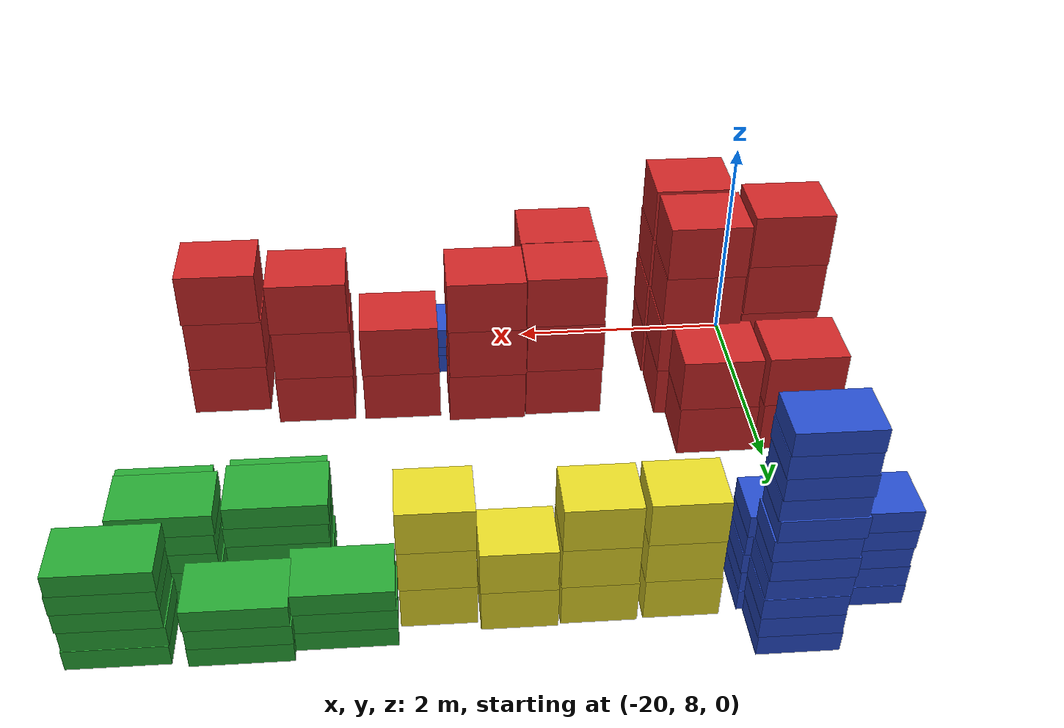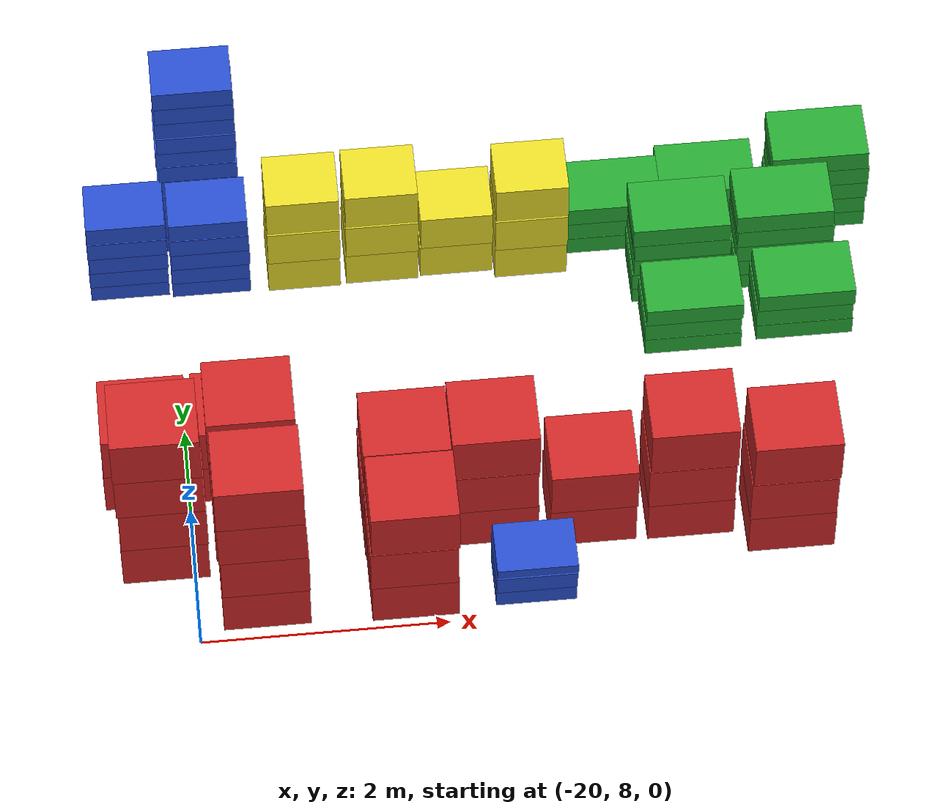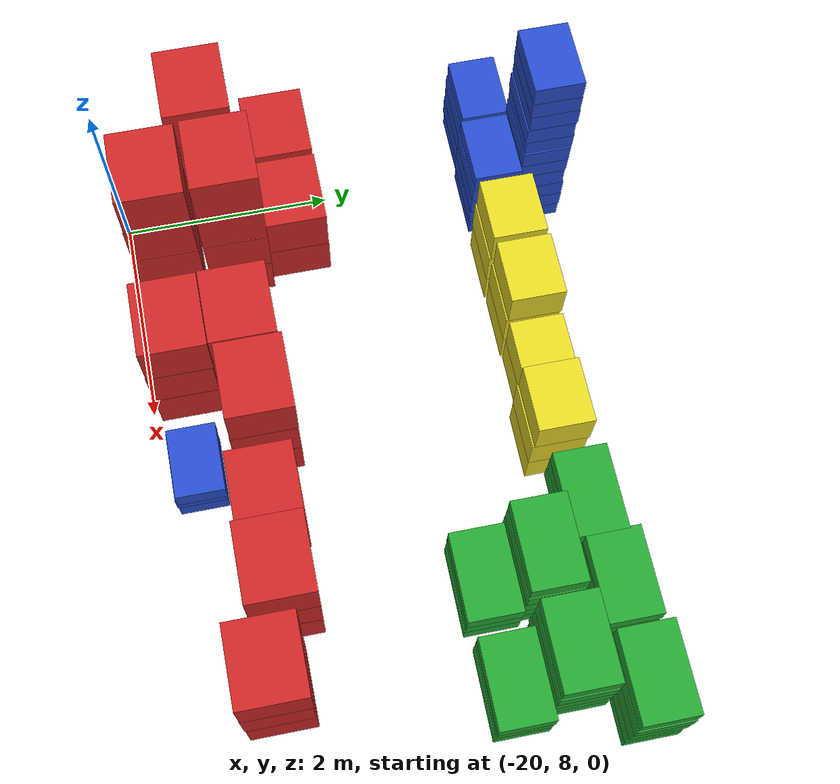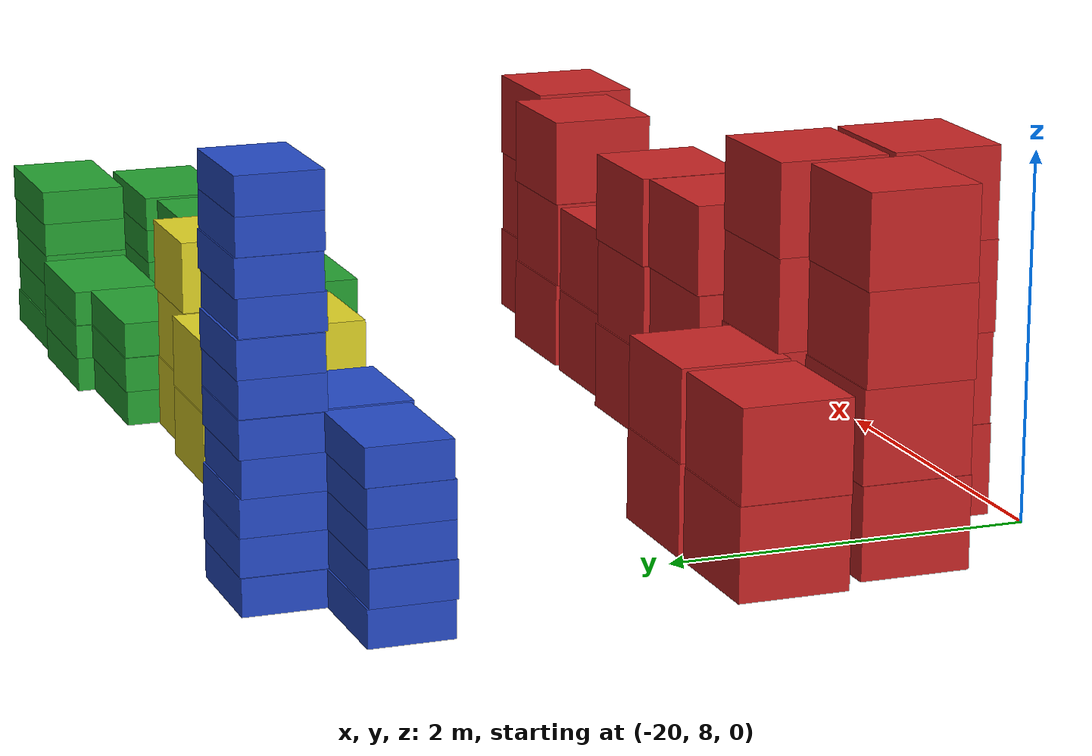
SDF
<sdf version="1.6">
 <world name="default">
  <include><uri>model://sun</uri></include>
  <model name="baggage_A_x3_5">
   <model name="baggage_A_0">
    <static>1</static>
    <link name="link">
     <collision name="collision"><geometry><box><size>0.7 0.6 0.5</size></box></geometry></collision>
     <visual name="visual">
      <geometry><box><size>0.7 0.6 0.5</size></box></geometry>
      <material>
       <script><uri>file://media/materials/scripts/gazebo.material</uri><name>Gazebo/Red</name></script>
      </material>
     </visual>
    </link>
    <pose>0 0 0.25 0 -0 0</pose>
   </model>
   <model name="baggage_A_1">
    <static>1</static>
    <link name="link">
     <collision name="collision"><geometry><box><size>0.7 0.6 0.5</size></box></geometry></collision>
     <visual name="visual">
      <geometry><box><size>0.7 0.6 0.5</size></box></geometry>
      <material>
       <script><uri>file://media/materials/scripts/gazebo.material</uri><name>Gazebo/Red</name></script>
      </material>
     </visual>
    </link>
    <pose>-0.006 -0.0077 0.75 0 -0 0</pose>
   </model>
   <model name="baggage_A_2">
    <static>1</static>
    <link name="link">
     <collision name="collision"><geometry><box><size>0.7 0.6 0.5</size></box></geometry></collision>
     <visual name="visual">
      <geometry><box><size>0.7 0.6 0.5</size></box></geometry>
      <material>
       <script><uri>file://media/materials/scripts/gazebo.material</uri><name>Gazebo/Red</name></script>
      </material>
     </visual>
    </link>
    <pose>0.0045 0.0005 1.25 0 -0 0</pose>
   </model>
   <pose>-15.1941 8.72762 0 0 -0 0</pose>
  </model>
  <model name="baggage_A_x4_6">
   <model name="baggage_A_0">
    <static>1</static>
    <link name="link">
     <collision name="collision"><geometry><box><size>0.7 0.6 0.5</size></box></geometry></collision>
     <visual name="visual">
      <geometry><box><size>0.7 0.6 0.5</size></box></geometry>
      <material>
       <script><uri>file://media/materials/scripts/gazebo.material</uri><name>Gazebo/Red</name></script>
      </material>
     </visual>
    </link>
    <pose>0 0 0.25 0 -0 0</pose>
   </model>
   <model name="baggage_A_1">
    <static>1</static>
    <link name="link">
     <collision name="collision"><geometry><box><size>0.7 0.6 0.5</size></box></geometry></collision>
     <visual name="visual">
      <geometry><box><size>0.7 0.6 0.5</size></box></geometry>
      <material>
       <script><uri>file://media/materials/scripts/gazebo.material</uri><name>Gazebo/Red</name></script>
      </material>
     </visual>
    </link>
    <pose>0.0053 0.0033 0.75 0 -0 0</pose>
   </model>
   <model name="baggage_A_2">
    <static>1</static>
    <link name="link">
     <collision name="collision"><geometry><box><size>0.7 0.6 0.5</size></box></geometry></collision>
     <visual name="visual">
      <geometry><box><size>0.7 0.6 0.5</size></box></geometry>
      <material>
       <script><uri>file://media/materials/scripts/gazebo.material</uri><name>Gazebo/Red</name></script>
      </material>
     </visual>
    </link>
    <pose>-0.0056 -0.0003 1.25 0 -0 0</pose>
   </model>
   <model name="baggage_A_3">
    <static>1</static>
    <link name="link">
     <collision name="collision"><geometry><box><size>0.7 0.6 0.5</size></box></geometry></collision>
     <visual name="visual">
      <geometry><box><size>0.7 0.6 0.5</size></box></geometry>
      <material>
       <script><uri>file://media/materials/scripts/gazebo.material</uri><name>Gazebo/Red</name></script>
      </material>
     </visual>
    </link>
    <pose>-0.0098 0.0065 1.75 0 -0 0</pose>
   </model>
   <pose>-19.4592 8.39699 0 0 -0 0</pose>
  </model>
  <model name="baggage_A_x4_7">
   <model name="baggage_A_0">
    <static>1</static>
    <link name="link">
     <collision name="collision"><geometry><box><size>0.7 0.6 0.5</size></box></geometry></collision>
     <visual name="visual">
      <geometry><box><size>0.7 0.6 0.5</size></box></geometry>
      <material>
       <script><uri>file://media/materials/scripts/gazebo.material</uri><name>Gazebo/Red</name></script>
      </material>
     </visual>
    </link>
    <pose>0 0 0.25 0 -0 0</pose>
   </model>
   <model name="baggage_A_1">
    <static>1</static>
    <link name="link">
     <collision name="collision"><geometry><box><size>0.7 0.6 0.5</size></box></geometry></collision>
     <visual name="visual">
      <geometry><box><size>0.7 0.6 0.5</size></box></geometry>
      <material>
       <script><uri>file://media/materials/scripts/gazebo.material</uri><name>Gazebo/Red</name></script>
      </material>
     </visual>
    </link>
    <pose>0.0053 0.0033 0.75 0 -0 0</pose>
   </model>
   <model name="baggage_A_2">
    <static>1</static>
    <link name="link">
     <collision name="collision"><geometry><box><size>0.7 0.6 0.5</size></box></geometry></collision>
     <visual name="visual">
      <geometry><box><size>0.7 0.6 0.5</size></box></geometry>
      <material>
       <script><uri>file://media/materials/scripts/gazebo.material</uri><name>Gazebo/Red</name></script>
      </material>
     </visual>
    </link>
    <pose>-0.0056 -0.0003 1.25 0 -0 0</pose>
   </model>
   <model name="baggage_A_3">
    <static>1</static>
    <link name="link">
     <collision name="collision"><geometry><box><size>0.7 0.6 0.5</size></box></geometry></collision>
     <visual name="visual">
      <geometry><box><size>0.7 0.6 0.5</size></box></geometry>
      <material>
       <script><uri>file://media/materials/scripts/gazebo.material</uri><name>Gazebo/Red</name></script>
      </material>
     </visual>
    </link>
    <pose>-0.0098 0.0065 1.75 0 -0 0</pose>
   </model>
   <pose>-19.4743 9.04443 0 0 -0 0</pose>
  </model>
  <model name="baggage_A_x4_8">
   <model name="baggage_A_0">
    <static>1</static>
    <link name="link">
     <collision name="collision"><geometry><box><size>0.7 0.6 0.5</size></box></geometry></collision>
     <visual name="visual">
      <geometry><box><size>0.7 0.6 0.5</size></box></geometry>
      <material>
       <script><uri>file://media/materials/scripts/gazebo.material</uri><name>Gazebo/Red</name></script>
      </material>
     </visual>
    </link>
    <pose>0 0 0.25 0 -0 0</pose>
   </model>
   <model name="baggage_A_1">
    <static>1</static>
    <link name="link">
     <collision name="collision"><geometry><box><size>0.7 0.6 0.5</size></box></geometry></collision>
     <visual name="visual">
      <geometry><box><size>0.7 0.6 0.5</size></box></geometry>
      <material>
       <script><uri>file://media/materials/scripts/gazebo.material</uri><name>Gazebo/Red</name></script>
      </material>
     </visual>
    </link>
    <pose>0.0053 0.0033 0.75 0 -0 0</pose>
   </model>
   <model name="baggage_A_2">
    <static>1</static>
    <link name="link">
     <collision name="collision"><geometry><box><size>0.7 0.6 0.5</size></box></geometry></collision>
     <visual name="visual">
      <geometry><box><size>0.7 0.6 0.5</size></box></geometry>
      <material>
       <script><uri>file://media/materials/scripts/gazebo.material</uri><name>Gazebo/Red</name></script>
      </material>
     </visual>
    </link>
    <pose>-0.0056 -0.0003 1.25 0 -0 0</pose>
   </model>
   <model name="baggage_A_3">
    <static>1</static>
    <link name="link">
     <collision name="collision"><geometry><box><size>0.7 0.6 0.5</size></box></geometry></collision>
     <visual name="visual">
      <geometry><box><size>0.7 0.6 0.5</size></box></geometry>
      <material>
       <script><uri>file://media/materials/scripts/gazebo.material</uri><name>Gazebo/Red</name></script>
      </material>
     </visual>
    </link>
    <pose>-0.0098 0.0065 1.75 0 -0 0</pose>
   </model>
   <pose>-20.2342 8.90723 0 0 -0 0</pose>
  </model>
  <model name="baggage_A_x2_6">
   <model name="baggage_A_0">
    <static>1</static>
    <link name="link">
     <collision name="collision"><geometry><box><size>0.7 0.6 0.5</size></box></geometry></collision>
     <visual name="visual">
      <geometry><box><size>0.7 0.6 0.5</size></box></geometry>
      <material>
       <script><uri>file://media/materials/scripts/gazebo.material</uri><name>Gazebo/Red</name></script>
      </material>
     </visual>
    </link>
    <pose>0 0 0.25 0 -0 0</pose>
   </model>
   <model name="baggage_A_1">
    <static>1</static>
    <link name="link">
     <collision name="collision"><geometry><box><size>0.7 0.6 0.5</size></box></geometry></collision>
     <visual name="visual">
      <geometry><box><size>0.7 0.6 0.5</size></box></geometry>
      <material>
       <script><uri>file://media/materials/scripts/gazebo.material</uri><name>Gazebo/Red</name></script>
      </material>
     </visual>
    </link>
    <pose>0.0063 -0.0062 0.75 0 -0 0</pose>
   </model>
   <pose>-20.3334 9.61634 0 0 -0 0</pose>
  </model>
  <model name="baggage_A_x2_7">
   <model name="baggage_A_0">
    <static>1</static>
    <link name="link">
     <collision name="collision"><geometry><box><size>0.7 0.6 0.5</size></box></geometry></collision>
     <visual name="visual">
      <geometry><box><size>0.7 0.6 0.5</size></box></geometry>
      <material>
       <script><uri>file://media/materials/scripts/gazebo.material</uri><name>Gazebo/Red</name></script>
      </material>
     </visual>
    </link>
    <pose>0 0 0.25 0 -0 0</pose>
   </model>
   <model name="baggage_A_1">
    <static>1</static>
    <link name="link">
     <collision name="collision"><geometry><box><size>0.7 0.6 0.5</size></box></geometry></collision>
     <visual name="visual">
      <geometry><box><size>0.7 0.6 0.5</size></box></geometry>
      <material>
       <script><uri>file://media/materials/scripts/gazebo.material</uri><name>Gazebo/Red</name></script>
      </material>
     </visual>
    </link>
    <pose>0.0063 -0.0062 0.75 0 -0 0</pose>
   </model>
   <pose>-19.582 9.62279 0 0 -0 0</pose>
  </model>
  <model name="baggage_B_x3_10">
   <model name="baggage_B_0">
    <static>1</static>
    <link name="link">
     <collision name="collision"><geometry><box><size>0.65 0.45 0.2</size></box></geometry></collision>
     <visual name="visual">
      <geometry><box><size>0.65 0.45 0.2</size></box></geometry>
      <material>
       <script><uri>file://media/materials/scripts/gazebo.material</uri><name>Gazebo/Blue</name></script>
      </material>
     </visual>
    </link>
    <pose>0 0 0.1 0 -0 0</pose>
   </model>
   <model name="baggage_B_1">
    <static>1</static>
    <link name="link">
     <collision name="collision"><geometry><box><size>0.65 0.45 0.2</size></box></geometry></collision>
     <visual name="visual">
      <geometry><box><size>0.65 0.45 0.2</size></box></geometry>
      <material>
       <script><uri>file://media/materials/scripts/gazebo.material</uri><name>Gazebo/Blue</name></script>
      </material>
     </visual>
    </link>
    <pose>0.0028 -0.0086 0.3 0 -0 0</pose>
   </model>
   <model name="baggage_B_2">
    <static>1</static>
    <link name="link">
     <collision name="collision"><geometry><box><size>0.65 0.45 0.2</size></box></geometry></collision>
     <visual name="visual">
      <geometry><box><size>0.65 0.45 0.2</size></box></geometry>
      <material>
       <script><uri>file://media/materials/scripts/gazebo.material</uri><name>Gazebo/Blue</name></script>
      </material>
     </visual>
    </link>
    <pose>0.0092 0.006 0.4 0 -0 0</pose>
   </model>
   <pose>-17.2936 8.3443 0 0 -0 0</pose>
  </model>
  <model name="baggage_B_x5_7">
   <model name="baggage_B_0">
    <static>1</static>
    <link name="link">
     <collision name="collision"><geometry><box><size>0.65 0.45 0.2</size></box></geometry></collision>
     <visual name="visual">
      <geometry><box><size>0.65 0.45 0.2</size></box></geometry>
      <material>
       <script><uri>file://media/materials/scripts/gazebo.material</uri><name>Gazebo/Blue</name></script>
      </material>
     </visual>
    </link>
    <pose>0 0 0.1 0 -0 0</pose>
   </model>
   <model name="baggage_B_1">
    <static>1</static>
    <link name="link">
     <collision name="collision"><geometry><box><size>0.65 0.45 0.2</size></box></geometry></collision>
     <visual name="visual">
      <geometry><box><size>0.65 0.45 0.2</size></box></geometry>
      <material>
       <script><uri>file://media/materials/scripts/gazebo.material</uri><name>Gazebo/Blue</name></script>
      </material>
     </visual>
    </link>
    <pose>-0.0014 -0.0091 0.3 0 -0 0</pose>
   </model>
   <model name="baggage_B_2">
    <static>1</static>
    <link name="link">
     <collision name="collision"><geometry><box><size>0.65 0.45 0.2</size></box></geometry></collision>
     <visual name="visual">
      <geometry><box><size>0.65 0.45 0.2</size></box></geometry>
      <material>
       <script><uri>file://media/materials/scripts/gazebo.material</uri><name>Gazebo/Blue</name></script>
      </material>
     </visual>
    </link>
    <pose>0.0076 -0.0066 0.5 0 -0 0</pose>
   </model>
   <model name="baggage_B_3">
    <static>1</static>
    <link name="link">
     <collision name="collision"><geometry><box><size>0.65 0.45 0.2</size></box></geometry></collision>
     <visual name="visual">
      <geometry><box><size>0.65 0.45 0.2</size></box></geometry>
      <material>
       <script><uri>file://media/materials/scripts/gazebo.material</uri><name>Gazebo/Blue</name></script>
      </material>
     </visual>
    </link>
    <pose>0 -0.0032 0.7 0 -0 0</pose>
   </model>
   <model name="baggage_B_4">
    <static>1</static>
    <link name="link">
     <collision name="collision"><geometry><box><size>0.65 0.45 0.2</size></box></geometry></collision>
     <visual name="visual">
      <geometry><box><size>0.65 0.45 0.2</size></box></geometry>
      <material>
       <script><uri>file://media/materials/scripts/gazebo.material</uri><name>Gazebo/Blue</name></script>
      </material>
     </visual>
    </link>
    <pose>0.0023 0.0073 0.9 0 -0 0</pose>
   </model>
   <pose>-20.3574 11.6061 0 0 -0 0</pose>
  </model>
  <model name="baggage_B_x5_8">
   <model name="baggage_B_0">
    <static>1</static>
    <link name="link">
     <collision name="collision"><geometry><box><size>0.65 0.45 0.2</size></box></geometry></collision>
     <visual name="visual">
      <geometry><box><size>0.65 0.45 0.2</size></box></geometry>
      <material>
       <script><uri>file://media/materials/scripts/gazebo.material</uri><name>Gazebo/Blue</name></script>
      </material>
     </visual>
    </link>
    <pose>0 0 0.1 0 -0 0</pose>
   </model>
   <model name="baggage_B_1">
    <static>1</static>
    <link name="link">
     <collision name="collision"><geometry><box><size>0.65 0.45 0.2</size></box></geometry></collision>
     <visual name="visual">
      <geometry><box><size>0.65 0.45 0.2</size></box></geometry>
      <material>
       <script><uri>file://media/materials/scripts/gazebo.material</uri><name>Gazebo/Blue</name></script>
      </material>
     </visual>
    </link>
    <pose>-0.0014 -0.0091 0.3 0 -0 0</pose>
   </model>
   <model name="baggage_B_2">
    <static>1</static>
    <link name="link">
     <collision name="collision"><geometry><box><size>0.65 0.45 0.2</size></box></geometry></collision>
     <visual name="visual">
      <geometry><box><size>0.65 0.45 0.2</size></box></geometry>
      <material>
       <script><uri>file://media/materials/scripts/gazebo.material</uri><name>Gazebo/Blue</name></script>
      </material>
     </visual>
    </link>
    <pose>0.0076 -0.0066 0.5 0 -0 0</pose>
   </model>
   <model name="baggage_B_3">
    <static>1</static>
    <link name="link">
     <collision name="collision"><geometry><box><size>0.65 0.45 0.2</size></box></geometry></collision>
     <visual name="visual">
      <geometry><box><size>0.65 0.45 0.2</size></box></geometry>
      <material>
       <script><uri>file://media/materials/scripts/gazebo.material</uri><name>Gazebo/Blue</name></script>
      </material>
     </visual>
    </link>
    <pose>0 -0.0032 0.7 0 -0 0</pose>
   </model>
   <model name="baggage_B_4">
    <static>1</static>
    <link name="link">
     <collision name="collision"><geometry><box><size>0.65 0.45 0.2</size></box></geometry></collision>
     <visual name="visual">
      <geometry><box><size>0.65 0.45 0.2</size></box></geometry>
      <material>
       <script><uri>file://media/materials/scripts/gazebo.material</uri><name>Gazebo/Blue</name></script>
      </material>
     </visual>
    </link>
    <pose>0.0023 0.0073 0.9 0 -0 0</pose>
   </model>
   <pose>-19.6809 11.58 0 0 -0 0</pose>
  </model>
  <model name="baggage_B_x11_0">
   <model name="baggage_B_0">
    <static>1</static>
    <link name="link">
     <collision name="collision"><geometry><box><size>0.65 0.45 0.2</size></box></geometry></collision>
     <visual name="visual">
      <geometry><box><size>0.65 0.45 0.2</size></box></geometry>
      <material>
       <script><uri>file://media/materials/scripts/gazebo.material</uri><name>Gazebo/Blue</name></script>
      </material>
     </visual>
    </link>
    <pose>0 0 0.1 0 -0 0</pose>
   </model>
   <model name="baggage_B_1">
    <static>1</static>
    <link name="link">
     <collision name="collision"><geometry><box><size>0.65 0.45 0.2</size></box></geometry></collision>
     <visual name="visual">
      <geometry><box><size>0.65 0.45 0.2</size></box></geometry>
      <material>
       <script><uri>file://media/materials/scripts/gazebo.material</uri><name>Gazebo/Blue</name></script>
      </material>
     </visual>
    </link>
    <pose>0.0088 0.0038 0.3 0 -0 0</pose>
   </model>
   <model name="baggage_B_2">
    <static>1</static>
    <link name="link">
     <collision name="collision"><geometry><box><size>0.65 0.45 0.2</size></box></geometry></collision>
     <visual name="visual">
      <geometry><box><size>0.65 0.45 0.2</size></box></geometry>
      <material>
       <script><uri>file://media/materials/scripts/gazebo.material</uri><name>Gazebo/Blue</name></script>
      </material>
     </visual>
    </link>
    <pose>0.0099 0.0013 0.5 0 -0 0</pose>
   </model>
   <model name="baggage_B_3">
    <static>1</static>
    <link name="link">
     <collision name="collision"><geometry><box><size>0.65 0.45 0.2</size></box></geometry></collision>
     <visual name="visual">
      <geometry><box><size>0.65 0.45 0.2</size></box></geometry>
      <material>
       <script><uri>file://media/materials/scripts/gazebo.material</uri><name>Gazebo/Blue</name></script>
      </material>
     </visual>
    </link>
    <pose>0.0022 -0.0084 0.7 0 -0 0</pose>
   </model>
   <model name="baggage_B_4">
    <static>1</static>
    <link name="link">
     <collision name="collision"><geometry><box><size>0.65 0.45 0.2</size></box></geometry></collision>
     <visual name="visual">
      <geometry><box><size>0.65 0.45 0.2</size></box></geometry>
      <material>
       <script><uri>file://media/materials/scripts/gazebo.material</uri><name>Gazebo/Blue</name></script>
      </material>
     </visual>
    </link>
    <pose>-0.0036 0.0023 0.9 0 -0 0</pose>
   </model>
   <model name="baggage_B_5">
    <static>1</static>
    <link name="link">
     <collision name="collision"><geometry><box><size>0.65 0.45 0.2</size></box></geometry></collision>
     <visual name="visual">
      <geometry><box><size>0.65 0.45 0.2</size></box></geometry>
      <material>
       <script><uri>file://media/materials/scripts/gazebo.material</uri><name>Gazebo/Blue</name></script>
      </material>
     </visual>
    </link>
    <pose>0.0085 -0.0016 1.1 0 -0 0</pose>
   </model>
   <model name="baggage_B_6">
    <static>1</static>
    <link name="link">
     <collision name="collision"><geometry><box><size>0.65 0.45 0.2</size></box></geometry></collision>
     <visual name="visual">
      <geometry><box><size>0.65 0.45 0.2</size></box></geometry>
      <material>
       <script><uri>file://media/materials/scripts/gazebo.material</uri><name>Gazebo/Blue</name></script>
      </material>
     </visual>
    </link>
    <pose>-0.0066 0.0086 1.3 0 -0 0</pose>
   </model>
   <model name="baggage_B_7">
    <static>1</static>
    <link name="link">
     <collision name="collision"><geometry><box><size>0.65 0.45 0.2</size></box></geometry></collision>
     <visual name="visual">
      <geometry><box><size>0.65 0.45 0.2</size></box></geometry>
      <material>
       <script><uri>file://media/materials/scripts/gazebo.material</uri><name>Gazebo/Blue</name></script>
      </material>
     </visual>
    </link>
    <pose>0.0096 -0.0061 1.5 0 -0 0</pose>
   </model>
   <model name="baggage_B_8">
    <static>1</static>
    <link name="link">
     <collision name="collision"><geometry><box><size>0.65 0.45 0.2</size></box></geometry></collision>
     <visual name="visual">
      <geometry><box><size>0.65 0.45 0.2</size></box></geometry>
      <material>
       <script><uri>file://media/materials/scripts/gazebo.material</uri><name>Gazebo/Blue</name></script>
      </material>
     </visual>
    </link>
    <pose>0.0048 0.0081 1.7 0 -0 0</pose>
   </model>
   <model name="baggage_B_9">
    <static>1</static>
    <link name="link">
     <collision name="collision"><geometry><box><size>0.65 0.45 0.2</size></box></geometry></collision>
     <visual name="visual">
      <geometry><box><size>0.65 0.45 0.2</size></box></geometry>
      <material>
       <script><uri>file://media/materials/scripts/gazebo.material</uri><name>Gazebo/Blue</name></script>
      </material>
     </visual>
    </link>
    <pose>0.009 0.0009 1.9 0 -0 0</pose>
   </model>
   <model name="baggage_B_10">
    <static>1</static>
    <link name="link">
     <collision name="collision"><geometry><box><size>0.65 0.45 0.2</size></box></geometry></collision>
     <visual name="visual">
      <geometry><box><size>0.65 0.45 0.2</size></box></geometry>
      <material>
       <script><uri>file://media/materials/scripts/gazebo.material</uri><name>Gazebo/Blue</name></script>
      </material>
     </visual>
    </link>
    <pose>0.0028 0.0021 2.1 0 -0 0</pose>
   </model>
   <pose>-19.73 12.0439 0 0 -0 0</pose>
  </model>
  <model name="baggage_D_x5_6">
   <model name="baggage_D_0">
    <static>1</static>
    <link name="link">
     <collision name="collision"><geometry><box><size>0.8 0.5 0.2</size></box></geometry></collision>
     <visual name="visual">
      <geometry><box><size>0.8 0.5 0.2</size></box></geometry>
      <material>
       <script><uri>file://media/materials/scripts/gazebo.material</uri><name>Gazebo/Green</name></script>
      </material>
     </visual>
    </link>
    <pose>0 0 0.1 0 -0 0</pose>
   </model>
   <model name="baggage_D_1">
    <static>1</static>
    <link name="link">
     <collision name="collision"><geometry><box><size>0.8 0.5 0.2</size></box></geometry></collision>
     <visual name="visual">
      <geometry><box><size>0.8 0.5 0.2</size></box></geometry>
      <material>
       <script><uri>file://media/materials/scripts/gazebo.material</uri><name>Gazebo/Green</name></script>
      </material>
     </visual>
    </link>
    <pose>-0.0065 -0.0092 0.3 0 -0 0</pose>
   </model>
   <model name="baggage_D_2">
    <static>1</static>
    <link name="link">
     <collision name="collision"><geometry><box><size>0.8 0.5 0.2</size></box></geometry></collision>
     <visual name="visual">
      <geometry><box><size>0.8 0.5 0.2</size></box></geometry>
      <material>
       <script><uri>file://media/materials/scripts/gazebo.material</uri><name>Gazebo/Green</name></script>
      </material>
     </visual>
    </link>
    <pose>0.005 -0.0052 0.5 0 -0 0</pose>
   </model>
   <model name="baggage_D_3">
    <static>1</static>
    <link name="link">
     <collision name="collision"><geometry><box><size>0.8 0.5 0.2</size></box></geometry></collision>
     <visual name="visual">
      <geometry><box><size>0.8 0.5 0.2</size></box></geometry>
      <material>
       <script><uri>file://media/materials/scripts/gazebo.material</uri><name>Gazebo/Green</name></script>
      </material>
     </visual>
    </link>
    <pose>0.0074 0.0002 0.7 0 -0 0</pose>
   </model>
   <model name="baggage_D_4">
    <static>1</static>
    <link name="link">
     <collision name="collision"><geometry><box><size>0.8 0.5 0.2</size></box></geometry></collision>
     <visual name="visual">
      <geometry><box><size>0.8 0.5 0.2</size></box></geometry>
      <material>
       <script><uri>file://media/materials/scripts/gazebo.material</uri><name>Gazebo/Green</name></script>
      </material>
     </visual>
    </link>
    <pose>-0.006 0.0081 0.9 0 -0 0</pose>
   </model>
   <pose>-14.5839 11.7919 0 0 -0 0</pose>
  </model>
  <model name="baggage_D_x3_4">
   <model name="baggage_D_0">
    <static>1</static>
    <link name="link">
     <collision name="collision"><geometry><box><size>0.8 0.5 0.2</size></box></geometry></collision>
     <visual name="visual">
      <geometry><box><size>0.8 0.5 0.2</size></box></geometry>
      <material>
       <script><uri>file://media/materials/scripts/gazebo.material</uri><name>Gazebo/Green</name></script>
      </material>
     </visual>
    </link>
    <pose>0 0 0.1 0 -0 0</pose>
   </model>
   <model name="baggage_D_1">
    <static>1</static>
    <link name="link">
     <collision name="collision"><geometry><box><size>0.8 0.5 0.2</size></box></geometry></collision>
     <visual name="visual">
      <geometry><box><size>0.8 0.5 0.2</size></box></geometry>
      <material>
       <script><uri>file://media/materials/scripts/gazebo.material</uri><name>Gazebo/Green</name></script>
      </material>
     </visual>
    </link>
    <pose>-0.0056 0.0083 0.3 0 -0 0</pose>
   </model>
   <model name="baggage_D_2">
    <static>1</static>
    <link name="link">
     <collision name="collision"><geometry><box><size>0.8 0.5 0.2</size></box></geometry></collision>
     <visual name="visual">
      <geometry><box><size>0.8 0.5 0.2</size></box></geometry>
      <material>
       <script><uri>file://media/materials/scripts/gazebo.material</uri><name>Gazebo/Green</name></script>
      </material>
     </visual>
    </link>
    <pose>0.0053 0.0057 0.5 0 -0 0</pose>
   </model>
   <pose>-15.5143 11.8281 0 0 -0 0</pose>
  </model>
  <model name="baggage_D_x5_7">
   <model name="baggage_D_0">
    <static>1</static>
    <link name="link">
     <collision name="collision"><geometry><box><size>0.8 0.5 0.2</size></box></geometry></collision>
     <visual name="visual">
      <geometry><box><size>0.8 0.5 0.2</size></box></geometry>
      <material>
       <script><uri>file://media/materials/scripts/gazebo.material</uri><name>Gazebo/Green</name></script>
      </material>
     </visual>
    </link>
    <pose>0 0 0.1 0 -0 0</pose>
   </model>
   <model name="baggage_D_1">
    <static>1</static>
    <link name="link">
     <collision name="collision"><geometry><box><size>0.8 0.5 0.2</size></box></geometry></collision>
     <visual name="visual">
      <geometry><box><size>0.8 0.5 0.2</size></box></geometry>
      <material>
       <script><uri>file://media/materials/scripts/gazebo.material</uri><name>Gazebo/Green</name></script>
      </material>
     </visual>
    </link>
    <pose>-0.0065 -0.0092 0.3 0 -0 0</pose>
   </model>
   <model name="baggage_D_2">
    <static>1</static>
    <link name="link">
     <collision name="collision"><geometry><box><size>0.8 0.5 0.2</size></box></geometry></collision>
     <visual name="visual">
      <geometry><box><size>0.8 0.5 0.2</size></box></geometry>
      <material>
       <script><uri>file://media/materials/scripts/gazebo.material</uri><name>Gazebo/Green</name></script>
      </material>
     </visual>
    </link>
    <pose>0.005 -0.0052 0.5 0 -0 0</pose>
   </model>
   <model name="baggage_D_3">
    <static>1</static>
    <link name="link">
     <collision name="collision"><geometry><box><size>0.8 0.5 0.2</size></box></geometry></collision>
     <visual name="visual">
      <geometry><box><size>0.8 0.5 0.2</size></box></geometry>
      <material>
       <script><uri>file://media/materials/scripts/gazebo.material</uri><name>Gazebo/Green</name></script>
      </material>
     </visual>
    </link>
    <pose>0.0074 0.0002 0.7 0 -0 0</pose>
   </model>
   <model name="baggage_D_4">
    <static>1</static>
    <link name="link">
     <collision name="collision"><geometry><box><size>0.8 0.5 0.2</size></box></geometry></collision>
     <visual name="visual">
      <geometry><box><size>0.8 0.5 0.2</size></box></geometry>
      <material>
       <script><uri>file://media/materials/scripts/gazebo.material</uri><name>Gazebo/Green</name></script>
      </material>
     </visual>
    </link>
    <pose>-0.006 0.0081 0.9 0 -0 0</pose>
   </model>
   <pose>-14.9459 11.2432 0 0 -0 0</pose>
  </model>
  <model name="baggage_A_x3_7">
   <model name="baggage_A_0">
    <static>1</static>
    <link name="link">
     <collision name="collision"><geometry><box><size>0.7 0.6 0.5</size></box></geometry></collision>
     <visual name="visual">
      <geometry><box><size>0.7 0.6 0.5</size></box></geometry>
      <material>
       <script><uri>file://media/materials/scripts/gazebo.material</uri><name>Gazebo/Red</name></script>
      </material>
     </visual>
    </link>
    <pose>0 0 0.25 0 -0 0</pose>
   </model>
   <model name="baggage_A_1">
    <static>1</static>
    <link name="link">
     <collision name="collision"><geometry><box><size>0.7 0.6 0.5</size></box></geometry></collision>
     <visual name="visual">
      <geometry><box><size>0.7 0.6 0.5</size></box></geometry>
      <material>
       <script><uri>file://media/materials/scripts/gazebo.material</uri><name>Gazebo/Red</name></script>
      </material>
     </visual>
    </link>
    <pose>-0.006 -0.0077 0.75 0 -0 0</pose>
   </model>
   <model name="baggage_A_2">
    <static>1</static>
    <link name="link">
     <collision name="collision"><geometry><box><size>0.7 0.6 0.5</size></box></geometry></collision>
     <visual name="visual">
      <geometry><box><size>0.7 0.6 0.5</size></box></geometry>
      <material>
       <script><uri>file://media/materials/scripts/gazebo.material</uri><name>Gazebo/Red</name></script>
      </material>
     </visual>
    </link>
    <pose>0.0045 0.0005 1.25 0 -0 0</pose>
   </model>
   <pose>-15.991 8.92518 0 0 -0 0</pose>
  </model>
  <model name="baggage_A_x2_9">
   <model name="baggage_A_0">
    <static>1</static>
    <link name="link">
     <collision name="collision"><geometry><box><size>0.7 0.6 0.5</size></box></geometry></collision>
     <visual name="visual">
      <geometry><box><size>0.7 0.6 0.5</size></box></geometry>
      <material>
       <script><uri>file://media/materials/scripts/gazebo.material</uri><name>Gazebo/Red</name></script>
      </material>
     </visual>
    </link>
    <pose>0 0 0.25 0 -0 0</pose>
   </model>
   <model name="baggage_A_1">
    <static>1</static>
    <link name="link">
     <collision name="collision"><geometry><box><size>0.7 0.6 0.5</size></box></geometry></collision>
     <visual name="visual">
      <geometry><box><size>0.7 0.6 0.5</size></box></geometry>
      <material>
       <script><uri>file://media/materials/scripts/gazebo.material</uri><name>Gazebo/Red</name></script>
      </material>
     </visual>
    </link>
    <pose>0.0063 -0.0062 0.75 0 -0 0</pose>
   </model>
   <pose>-16.7834 8.93625 0 0 -0 0</pose>
  </model>
  <model name="baggage_A_x3_9">
   <model name="baggage_A_0">
    <static>1</static>
    <link name="link">
     <collision name="collision"><geometry><box><size>0.7 0.6 0.5</size></box></geometry></collision>
     <visual name="visual">
      <geometry><box><size>0.7 0.6 0.5</size></box></geometry>
      <material>
       <script><uri>file://media/materials/scripts/gazebo.material</uri><name>Gazebo/Red</name></script>
      </material>
     </visual>
    </link>
    <pose>0 0 0.25 0 -0 0</pose>
   </model>
   <model name="baggage_A_1">
    <static>1</static>
    <link name="link">
     <collision name="collision"><geometry><box><size>0.7 0.6 0.5</size></box></geometry></collision>
     <visual name="visual">
      <geometry><box><size>0.7 0.6 0.5</size></box></geometry>
      <material>
       <script><uri>file://media/materials/scripts/gazebo.material</uri><name>Gazebo/Red</name></script>
      </material>
     </visual>
    </link>
    <pose>-0.006 -0.0077 0.75 0 -0 0</pose>
   </model>
   <model name="baggage_A_2">
    <static>1</static>
    <link name="link">
     <collision name="collision"><geometry><box><size>0.7 0.6 0.5</size></box></geometry></collision>
     <visual name="visual">
      <geometry><box><size>0.7 0.6 0.5</size></box></geometry>
      <material>
       <script><uri>file://media/materials/scripts/gazebo.material</uri><name>Gazebo/Red</name></script>
      </material>
     </visual>
    </link>
    <pose>0.0045 0.0005 1.25 0 -0 0</pose>
   </model>
   <pose>-17.5663 9.01031 0 0 -0 0</pose>
  </model>
  <model name="baggage_A_x3_10">
   <model name="baggage_A_0">
    <static>1</static>
    <link name="link">
     <collision name="collision"><geometry><box><size>0.7 0.6 0.5</size></box></geometry></collision>
     <visual name="visual">
      <geometry><box><size>0.7 0.6 0.5</size></box></geometry>
      <material>
       <script><uri>file://media/materials/scripts/gazebo.material</uri><name>Gazebo/Red</name></script>
      </material>
     </visual>
    </link>
    <pose>0 0 0.25 0 -0 0</pose>
   </model>
   <model name="baggage_A_1">
    <static>1</static>
    <link name="link">
     <collision name="collision"><geometry><box><size>0.7 0.6 0.5</size></box></geometry></collision>
     <visual name="visual">
      <geometry><box><size>0.7 0.6 0.5</size></box></geometry>
      <material>
       <script><uri>file://media/materials/scripts/gazebo.material</uri><name>Gazebo/Red</name></script>
      </material>
     </visual>
    </link>
    <pose>-0.006 -0.0077 0.75 0 -0 0</pose>
   </model>
   <model name="baggage_A_2">
    <static>1</static>
    <link name="link">
     <collision name="collision"><geometry><box><size>0.7 0.6 0.5</size></box></geometry></collision>
     <visual name="visual">
      <geometry><box><size>0.7 0.6 0.5</size></box></geometry>
      <material>
       <script><uri>file://media/materials/scripts/gazebo.material</uri><name>Gazebo/Red</name></script>
      </material>
     </visual>
    </link>
    <pose>0.0045 0.0005 1.25 0 -0 0</pose>
   </model>
   <pose>-18.2675 8.36978 0 0 -0 0</pose>
  </model>
  <model name="baggage_A_x3_11">
   <model name="baggage_A_0">
    <static>1</static>
    <link name="link">
     <collision name="collision"><geometry><box><size>0.7 0.6 0.5</size></box></geometry></collision>
     <visual name="visual">
      <geometry><box><size>0.7 0.6 0.5</size></box></geometry>
      <material>
       <script><uri>file://media/materials/scripts/gazebo.material</uri><name>Gazebo/Red</name></script>
      </material>
     </visual>
    </link>
    <pose>0 0 0.25 0 -0 0</pose>
   </model>
   <model name="baggage_A_1">
    <static>1</static>
    <link name="link">
     <collision name="collision"><geometry><box><size>0.7 0.6 0.5</size></box></geometry></collision>
     <visual name="visual">
      <geometry><box><size>0.7 0.6 0.5</size></box></geometry>
      <material>
       <script><uri>file://media/materials/scripts/gazebo.material</uri><name>Gazebo/Red</name></script>
      </material>
     </visual>
    </link>
    <pose>-0.006 -0.0077 0.75 0 -0 0</pose>
   </model>
   <model name="baggage_A_2">
    <static>1</static>
    <link name="link">
     <collision name="collision"><geometry><box><size>0.7 0.6 0.5</size></box></geometry></collision>
     <visual name="visual">
      <geometry><box><size>0.7 0.6 0.5</size></box></geometry>
      <material>
       <script><uri>file://media/materials/scripts/gazebo.material</uri><name>Gazebo/Red</name></script>
      </material>
     </visual>
    </link>
    <pose>0.0045 0.0005 1.25 0 -0 0</pose>
   </model>
   <pose>-18.2751 8.97615 0 0 -0 0</pose>
  </model>
  <model name="baggage_D_x3_5">
   <model name="baggage_D_0">
    <static>1</static>
    <link name="link">
     <collision name="collision"><geometry><box><size>0.8 0.5 0.2</size></box></geometry></collision>
     <visual name="visual">
      <geometry><box><size>0.8 0.5 0.2</size></box></geometry>
      <material>
       <script><uri>file://media/materials/scripts/gazebo.material</uri><name>Gazebo/Green</name></script>
      </material>
     </visual>
    </link>
    <pose>0 0 0.1 0 -0 0</pose>
   </model>
   <model name="baggage_D_1">
    <static>1</static>
    <link name="link">
     <collision name="collision"><geometry><box><size>0.8 0.5 0.2</size></box></geometry></collision>
     <visual name="visual">
      <geometry><box><size>0.8 0.5 0.2</size></box></geometry>
      <material>
       <script><uri>file://media/materials/scripts/gazebo.material</uri><name>Gazebo/Green</name></script>
      </material>
     </visual>
    </link>
    <pose>-0.0056 0.0083 0.3 0 -0 0</pose>
   </model>
   <model name="baggage_D_2">
    <static>1</static>
    <link name="link">
     <collision name="collision"><geometry><box><size>0.8 0.5 0.2</size></box></geometry></collision>
     <visual name="visual">
      <geometry><box><size>0.8 0.5 0.2</size></box></geometry>
      <material>
       <script><uri>file://media/materials/scripts/gazebo.material</uri><name>Gazebo/Green</name></script>
      </material>
     </visual>
    </link>
    <pose>0.0053 0.0057 0.5 0 -0 0</pose>
   </model>
   <pose>-16.2999 11.7299 0 0 -0 0</pose>
  </model>
  <model name="baggage_C_x3_9">
   <model name="baggage_C_0">
    <static>1</static>
    <link name="link">
     <collision name="collision"><geometry><box><size>0.6 0.5 0.4</size></box></geometry></collision>
     <visual name="visual">
      <geometry><box><size>0.6 0.5 0.4</size></box></geometry>
      <material>
       <script><uri>file://media/materials/scripts/gazebo.material</uri><name>Gazebo/Yellow</name></script>
      </material>
     </visual>
    </link>
    <pose>0 0 0.2 0 -0 0</pose>
   </model>
   <model name="baggage_C_1">
    <static>1</static>
    <link name="link">
     <collision name="collision"><geometry><box><size>0.6 0.5 0.4</size></box></geometry></collision>
     <visual name="visual">
      <geometry><box><size>0.6 0.5 0.4</size></box></geometry>
      <material>
       <script><uri>file://media/materials/scripts/gazebo.material</uri><name>Gazebo/Yellow</name></script>
      </material>
     </visual>
    </link>
    <pose>0.0062 -0.0069 0.6 0 -0 0</pose>
   </model>
   <model name="baggage_C_2">
    <static>1</static>
    <link name="link">
     <collision name="collision"><geometry><box><size>0.6 0.5 0.4</size></box></geometry></collision>
     <visual name="visual">
      <geometry><box><size>0.6 0.5 0.4</size></box></geometry>
      <material>
       <script><uri>file://media/materials/scripts/gazebo.material</uri><name>Gazebo/Yellow</name></script>
      </material>
     </visual>
    </link>
    <pose>0.0089 0.0083 1 0 -0 0</pose>
   </model>
   <pose>-17.019 11.546 0 0 -0 0</pose>
  </model>
  <model name="baggage_C_x2_11">
   <model name="baggage_C_0">
    <static>1</static>
    <link name="link">
     <collision name="collision"><geometry><box><size>0.6 0.5 0.4</size></box></geometry></collision>
     <visual name="visual">
      <geometry><box><size>0.6 0.5 0.4</size></box></geometry>
      <material>
       <script><uri>file://media/materials/scripts/gazebo.material</uri><name>Gazebo/Yellow</name></script>
      </material>
     </visual>
    </link>
    <pose>0 0 0.2 0 -0 0</pose>
   </model>
   <model name="baggage_C_1">
    <static>1</static>
    <link name="link">
     <collision name="collision"><geometry><box><size>0.6 0.5 0.4</size></box></geometry></collision>
     <visual name="visual">
      <geometry><box><size>0.6 0.5 0.4</size></box></geometry>
      <material>
       <script><uri>file://media/materials/scripts/gazebo.material</uri><name>Gazebo/Yellow</name></script>
      </material>
     </visual>
    </link>
    <pose>0.0093 -0.002 0.6 0 -0 0</pose>
   </model>
   <pose>-17.6381 11.6205 0 0 -0 0</pose>
  </model>
  <model name="baggage_C_x3_11">
   <model name="baggage_C_0">
    <static>1</static>
    <link name="link">
     <collision name="collision"><geometry><box><size>0.6 0.5 0.4</size></box></geometry></collision>
     <visual name="visual">
      <geometry><box><size>0.6 0.5 0.4</size></box></geometry>
      <material>
       <script><uri>file://media/materials/scripts/gazebo.material</uri><name>Gazebo/Yellow</name></script>
      </material>
     </visual>
    </link>
    <pose>0 0 0.2 0 -0 0</pose>
   </model>
   <model name="baggage_C_1">
    <static>1</static>
    <link name="link">
     <collision name="collision"><geometry><box><size>0.6 0.5 0.4</size></box></geometry></collision>
     <visual name="visual">
      <geometry><box><size>0.6 0.5 0.4</size></box></geometry>
      <material>
       <script><uri>file://media/materials/scripts/gazebo.material</uri><name>Gazebo/Yellow</name></script>
      </material>
     </visual>
    </link>
    <pose>0.0062 -0.0069 0.6 0 -0 0</pose>
   </model>
   <model name="baggage_C_2">
    <static>1</static>
    <link name="link">
     <collision name="collision"><geometry><box><size>0.6 0.5 0.4</size></box></geometry></collision>
     <visual name="visual">
      <geometry><box><size>0.6 0.5 0.4</size></box></geometry>
      <material>
       <script><uri>file://media/materials/scripts/gazebo.material</uri><name>Gazebo/Yellow</name></script>
      </material>
     </visual>
    </link>
    <pose>0.0089 0.0083 1 0 -0 0</pose>
   </model>
   <pose>-18.2581 11.6029 0 0 -0 0</pose>
  </model>
  <model name="baggage_C_x3_12">
   <model name="baggage_C_0">
    <static>1</static>
    <link name="link">
     <collision name="collision"><geometry><box><size>0.6 0.5 0.4</size></box></geometry></collision>
     <visual name="visual">
      <geometry><box><size>0.6 0.5 0.4</size></box></geometry>
      <material>
       <script><uri>file://media/materials/scripts/gazebo.material</uri><name>Gazebo/Yellow</name></script>
      </material>
     </visual>
    </link>
    <pose>0 0 0.2 0 -0 0</pose>
   </model>
   <model name="baggage_C_1">
    <static>1</static>
    <link name="link">
     <collision name="collision"><geometry><box><size>0.6 0.5 0.4</size></box></geometry></collision>
     <visual name="visual">
      <geometry><box><size>0.6 0.5 0.4</size></box></geometry>
      <material>
       <script><uri>file://media/materials/scripts/gazebo.material</uri><name>Gazebo/Yellow</name></script>
      </material>
     </visual>
    </link>
    <pose>0.0062 -0.0069 0.6 0 -0 0</pose>
   </model>
   <model name="baggage_C_2">
    <static>1</static>
    <link name="link">
     <collision name="collision"><geometry><box><size>0.6 0.5 0.4</size></box></geometry></collision>
     <visual name="visual">
      <geometry><box><size>0.6 0.5 0.4</size></box></geometry>
      <material>
       <script><uri>file://media/materials/scripts/gazebo.material</uri><name>Gazebo/Yellow</name></script>
      </material>
     </visual>
    </link>
    <pose>0.0089 0.0083 1 0 -0 0</pose>
   </model>
   <pose>-18.907 11.5914 0 0 -0 0</pose>
  </model>
  <model name="baggage_D_x5_8">
   <model name="baggage_D_0">
    <static>1</static>
    <link name="link">
     <collision name="collision"><geometry><box><size>0.8 0.5 0.2</size></box></geometry></collision>
     <visual name="visual">
      <geometry><box><size>0.8 0.5 0.2</size></box></geometry>
      <material>
       <script><uri>file://media/materials/scripts/gazebo.material</uri><name>Gazebo/Green</name></script>
      </material>
     </visual>
    </link>
    <pose>0 0 0.1 0 -0 0</pose>
   </model>
   <model name="baggage_D_1">
    <static>1</static>
    <link name="link">
     <collision name="collision"><geometry><box><size>0.8 0.5 0.2</size></box></geometry></collision>
     <visual name="visual">
      <geometry><box><size>0.8 0.5 0.2</size></box></geometry>
      <material>
       <script><uri>file://media/materials/scripts/gazebo.material</uri><name>Gazebo/Green</name></script>
      </material>
     </visual>
    </link>
    <pose>-0.0065 -0.0092 0.3 0 -0 0</pose>
   </model>
   <model name="baggage_D_2">
    <static>1</static>
    <link name="link">
     <collision name="collision"><geometry><box><size>0.8 0.5 0.2</size></box></geometry></collision>
     <visual name="visual">
      <geometry><box><size>0.8 0.5 0.2</size></box></geometry>
      <material>
       <script><uri>file://media/materials/scripts/gazebo.material</uri><name>Gazebo/Green</name></script>
      </material>
     </visual>
    </link>
    <pose>0.005 -0.0052 0.5 0 -0 0</pose>
   </model>
   <model name="baggage_D_3">
    <static>1</static>
    <link name="link">
     <collision name="collision"><geometry><box><size>0.8 0.5 0.2</size></box></geometry></collision>
     <visual name="visual">
      <geometry><box><size>0.8 0.5 0.2</size></box></geometry>
      <material>
       <script><uri>file://media/materials/scripts/gazebo.material</uri><name>Gazebo/Green</name></script>
      </material>
     </visual>
    </link>
    <pose>0.0074 0.0002 0.7 0 -0 0</pose>
   </model>
   <model name="baggage_D_4">
    <static>1</static>
    <link name="link">
     <collision name="collision"><geometry><box><size>0.8 0.5 0.2</size></box></geometry></collision>
     <visual name="visual">
      <geometry><box><size>0.8 0.5 0.2</size></box></geometry>
      <material>
       <script><uri>file://media/materials/scripts/gazebo.material</uri><name>Gazebo/Green</name></script>
      </material>
     </visual>
    </link>
    <pose>-0.006 0.0081 0.9 0 -0 0</pose>
   </model>
   <pose>-15.807 11.1873 0 0 -0 0</pose>
  </model>
  <model name="baggage_D_x3_6">
   <model name="baggage_D_0">
    <static>1</static>
    <link name="link">
     <collision name="collision"><geometry><box><size>0.8 0.5 0.2</size></box></geometry></collision>
     <visual name="visual">
      <geometry><box><size>0.8 0.5 0.2</size></box></geometry>
      <material>
       <script><uri>file://media/materials/scripts/gazebo.material</uri><name>Gazebo/Green</name></script>
      </material>
     </visual>
    </link>
    <pose>0 0 0.1 0 -0 0</pose>
   </model>
   <model name="baggage_D_1">
    <static>1</static>
    <link name="link">
     <collision name="collision"><geometry><box><size>0.8 0.5 0.2</size></box></geometry></collision>
     <visual name="visual">
      <geometry><box><size>0.8 0.5 0.2</size></box></geometry>
      <material>
       <script><uri>file://media/materials/scripts/gazebo.material</uri><name>Gazebo/Green</name></script>
      </material>
     </visual>
    </link>
    <pose>-0.0056 0.0083 0.3 0 -0 0</pose>
   </model>
   <model name="baggage_D_2">
    <static>1</static>
    <link name="link">
     <collision name="collision"><geometry><box><size>0.8 0.5 0.2</size></box></geometry></collision>
     <visual name="visual">
      <geometry><box><size>0.8 0.5 0.2</size></box></geometry>
      <material>
       <script><uri>file://media/materials/scripts/gazebo.material</uri><name>Gazebo/Green</name></script>
      </material>
     </visual>
    </link>
    <pose>0.0053 0.0057 0.5 0 -0 0</pose>
   </model>
   <pose>-14.8247 10.7159 0 0 -0 0</pose>
  </model>
  <model name="baggage_D_x3_7">
   <model name="baggage_D_0">
    <static>1</static>
    <link name="link">
     <collision name="collision"><geometry><box><size>0.8 0.5 0.2</size></box></geometry></collision>
     <visual name="visual">
      <geometry><box><size>0.8 0.5 0.2</size></box></geometry>
      <material>
       <script><uri>file://media/materials/scripts/gazebo.material</uri><name>Gazebo/Green</name></script>
      </material>
     </visual>
    </link>
    <pose>0 0 0.1 0 -0 0</pose>
   </model>
   <model name="baggage_D_1">
    <static>1</static>
    <link name="link">
     <collision name="collision"><geometry><box><size>0.8 0.5 0.2</size></box></geometry></collision>
     <visual name="visual">
      <geometry><box><size>0.8 0.5 0.2</size></box></geometry>
      <material>
       <script><uri>file://media/materials/scripts/gazebo.material</uri><name>Gazebo/Green</name></script>
      </material>
     </visual>
    </link>
    <pose>-0.0056 0.0083 0.3 0 -0 0</pose>
   </model>
   <model name="baggage_D_2">
    <static>1</static>
    <link name="link">
     <collision name="collision"><geometry><box><size>0.8 0.5 0.2</size></box></geometry></collision>
     <visual name="visual">
      <geometry><box><size>0.8 0.5 0.2</size></box></geometry>
      <material>
       <script><uri>file://media/materials/scripts/gazebo.material</uri><name>Gazebo/Green</name></script>
      </material>
     </visual>
    </link>
    <pose>0.0053 0.0057 0.5 0 -0 0</pose>
   </model>
   <pose>-15.7573 10.6621 0 0 -0 0</pose>
  </model>
 </world>
</sdf>
